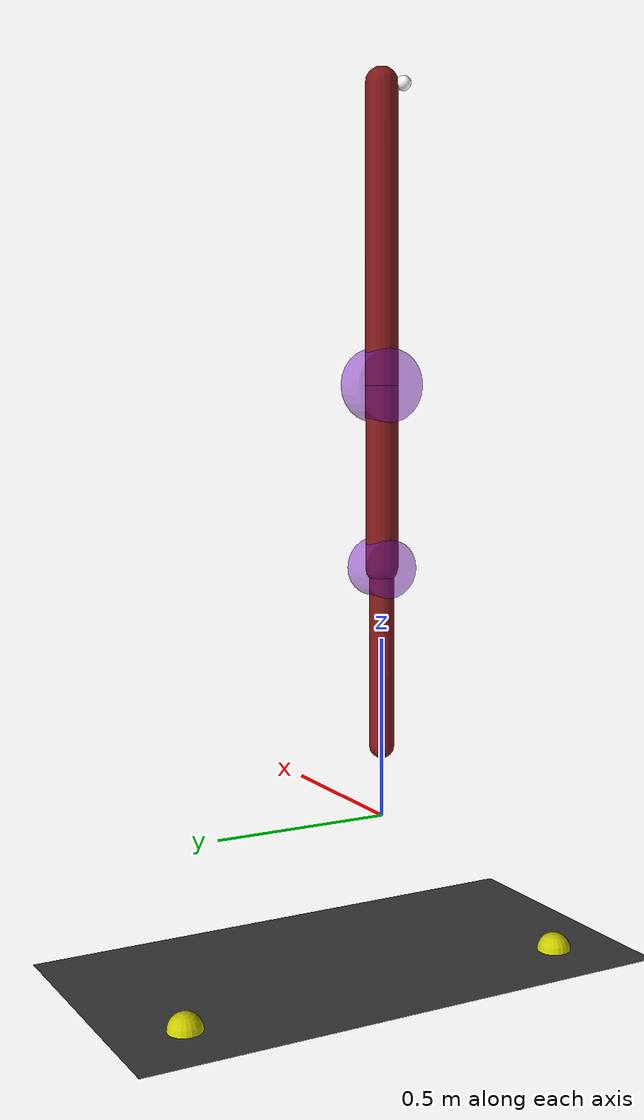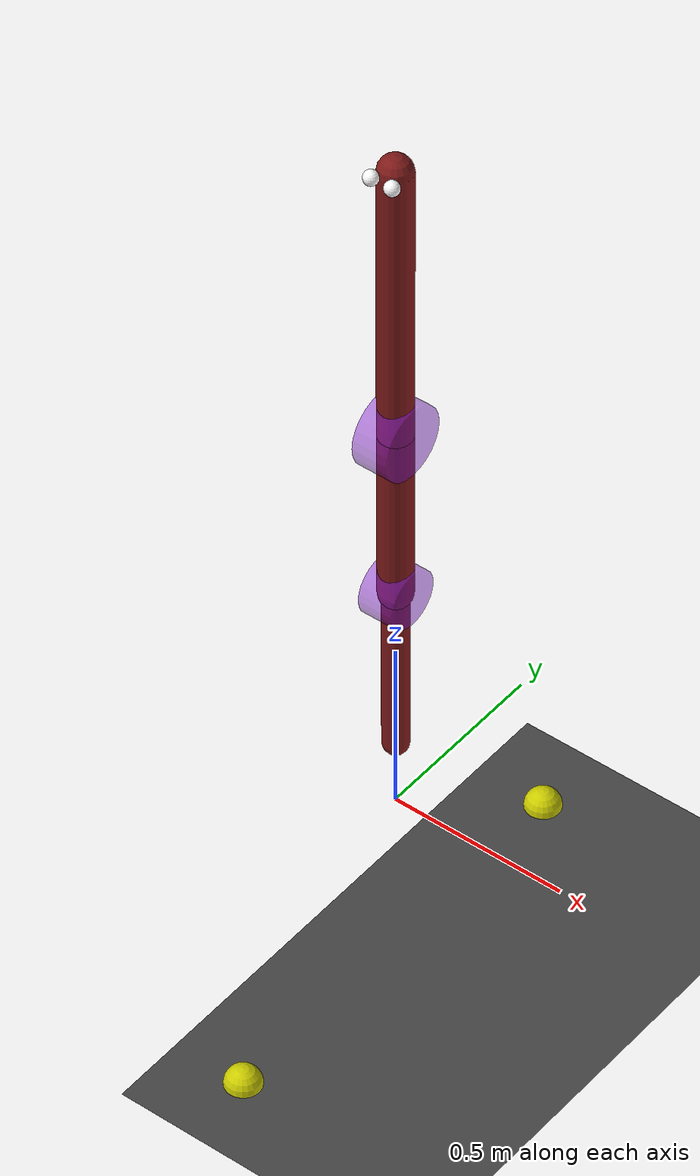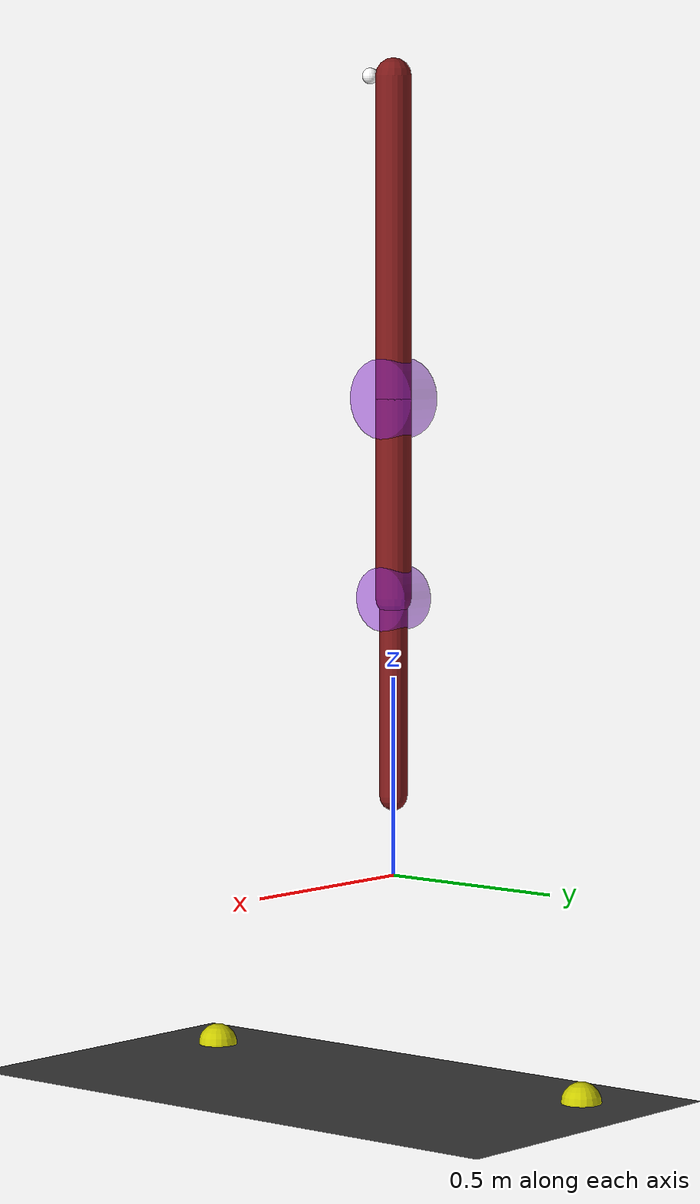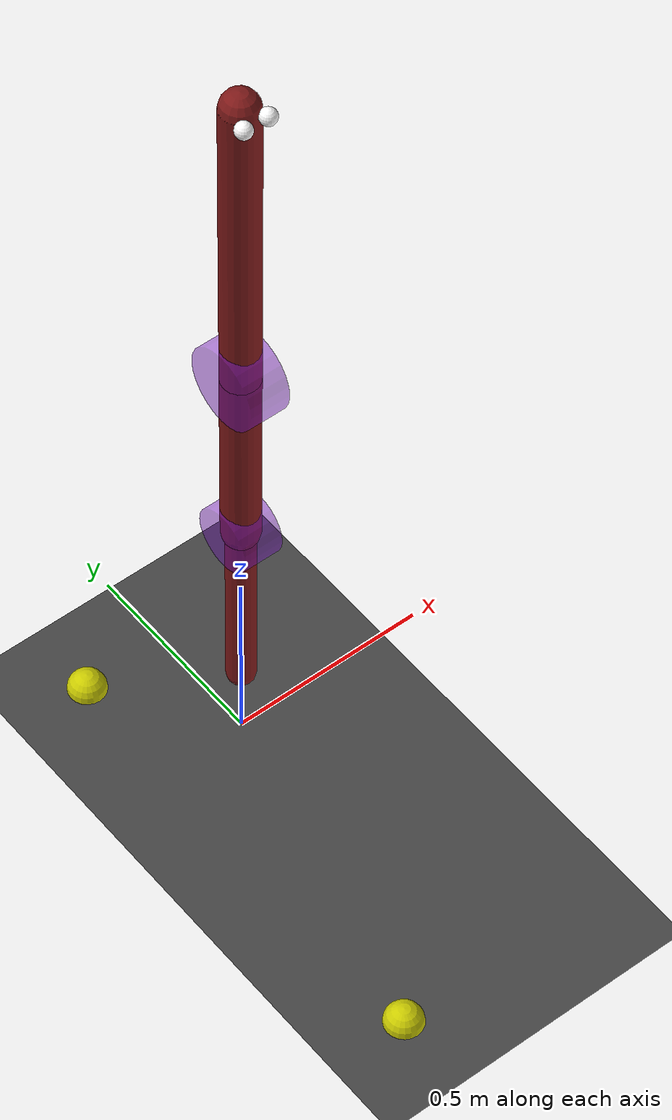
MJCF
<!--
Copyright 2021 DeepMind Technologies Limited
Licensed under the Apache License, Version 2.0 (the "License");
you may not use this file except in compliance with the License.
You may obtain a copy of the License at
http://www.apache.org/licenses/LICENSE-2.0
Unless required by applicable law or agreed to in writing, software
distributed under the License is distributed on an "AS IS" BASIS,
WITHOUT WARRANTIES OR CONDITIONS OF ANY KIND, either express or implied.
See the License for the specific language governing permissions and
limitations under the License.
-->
<mujoco model="2-link 6-muscle arm">
	<compiler inertiafromgeom="true"/>
    <option timestep="0.002" integrator="RK4" gravity="0 0 -9.81"/>

    <size njmax="100" nconmax="50" nstack="1000" nuserdata="200" nuser_actuator="4"/>

    <visual>
        <rgba haze=".1 .1 .1 1"/>
    </visual>

    <default>
        <muscle ctrllimited="true" ctrlrange="0 1" scale="0"/>
	<joint damping="1" armature="1" type="hinge" axis="1 0 0"/>
	<geom  friction="0.9" conaffinity="1" condim="1" contype="1" margin="0.001"  solimp=".8 .8 .01" solref=".02 1"/>
	<general dyntype="user" gaintype="user" biastype="user" dynprm="0.01 0.04"
    gainprm="0.75 1.05 -1 6000 0.5 1.6 0.5 1.3 1.2" biasprm="0.75 1.05 -1 6000 0.5 1.6 0.5 1.3 1.2" ctrlrange="0 1" ctrllimited="true"/>
    </default>

    <asset>
        <texture type="skybox" builtin="gradient" rgb1="0.6 0.6 0.6" rgb2="0 0 0" width="512" height="512"/>

        <texture name="texplane" type="2d" builtin="checker" rgb1=".25 .25 .25" rgb2=".3 .3 .3" width="512" height="512" mark="cross" markrgb=".8 .8 .8"/>

        <material name="matplane" reflectance="0.3" texture="texplane" texrepeat="1 1" texuniform="true"/>
    </asset>

    <worldbody>
    <geom name="floor" pos="0 0 -0.5" size="0 0 1" type="plane" material="matplane" conaffinity="1" condim="3" />
      <light mode="trackcom" directional="true" diffuse=".8 .8 .8" specular="0.3 0.3 0.3" pos="0 0 4.0" dir="0 0 -1"></light>

	<site name="limit1" pos="0.0 0.6 -0.5" size="0.05" rgba="0.8 0.8 0.0 1"/>
	<site name="limit2" pos="0.0 -0.6 -0.5" size="0.05" rgba="0.8 0.8 0.0 1"/>
	<body name="pelvis" pos="0 0 2.0">
	 	    <site name="eye1" pos="-0.03 -0.05 0.00" size="0.02" rgba="1 1 1 1"/>
	    <site name="eye2" pos="0.03 -0.05 0.00" size="0.02" rgba="1 1 1 1"/>
	    <geom name="torso" type="capsule" size="0.045" fromto="0 0 0  0 0 -0.8" rgba=".5 .1 .1 1"/>
	    <joint name="torso_z" type="slide" axis="0 0 1" armature="0" damping="0" stiffness="0"/>
	    <joint name="torso_y" type="slide" axis="0 1 0" armature="0" damping="0" stiffness="0"/>
        <joint name="torso_tilt" type="hinge" axis="1 0 0" armature="0" damping="0" stiffness="0" limited="false"/>

		<body name="upperleg" pos="0 0 -0.8">
            <joint name="hip" limited="true" range="-120 120"/>
            <geom name="hip" zaxis="1 0 0" type="cylinder" pos="0 0 0.0" size=".1 .05" rgba=".5 .1 .8 .5" mass="0" group="1"/>
		    <geom name="upperleg" type="capsule" size="0.045" fromto="0 0 0  0 0 -0.5" rgba=".5 .1 .1 1"/>
		    <body name="lowerleg" pos="0 0 -0.5">
                <joint name="knee" range="-10 120" limited="true"/>
                <geom name="knee" zaxis="1 0 0 " type="cylinder" pos="0 0 0" size=".08 .05" rgba=".5 .1 .8 .5" mass="0" group="1"/>
                <geom name="lowerleg" type="capsule" size="0.035" fromto="0 0 0  0.0 0 -0.5" rgba=".5 .1 .1 1"/>

                </body>
		</body>
	</body>

</worldbody>
<actuator>
    <general name="joint_0" joint="hip"/>
    <general name="joint_1" joint="knee"/>
</actuator>
</mujoco>
